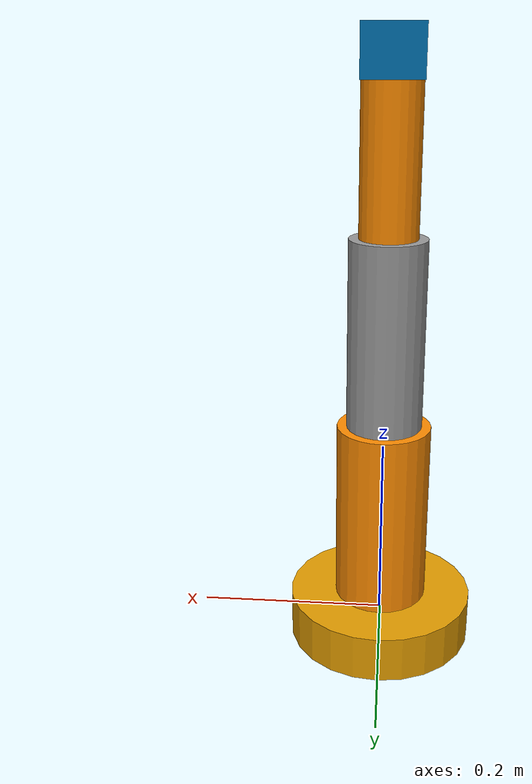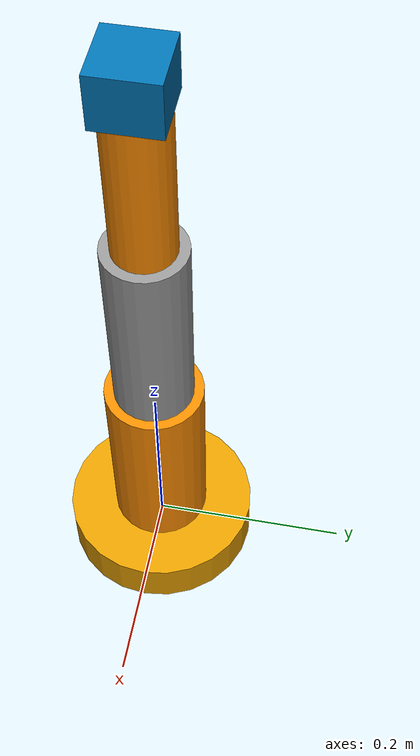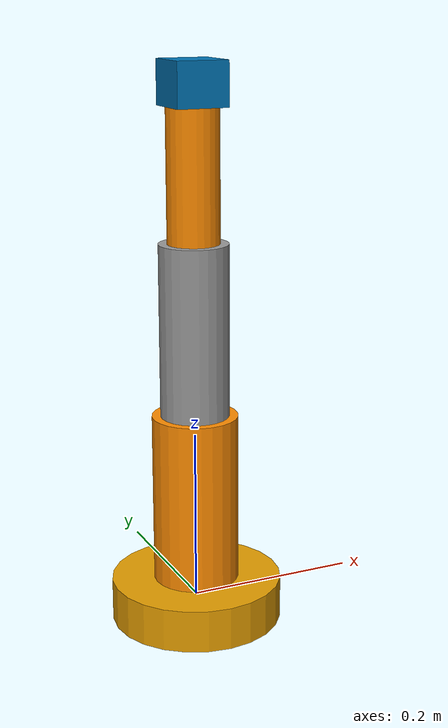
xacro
<?xml version="1.0"?>
<robot xmlns:xacro="http://www.ros.org/wiki/xacro" name="my_robot_arm">
  <xacro:property name="PI" value="3.141592653589793"/>
  <material name="orange"><color rgba="1 0.55 0 1"/></material>
  <material name="grey"><color rgba="0.6 0.6 0.6 1"/></material>

  <!-- base -->
  <link name="base_link">
    <visual><geometry><cylinder radius="0.1" length="0.05"/></geometry></visual>
  </link>

  <!-- link 1 -->
  <link name="link_1">
    <visual><origin xyz="0 0 0.1"/><geometry><cylinder radius="0.05" length="0.2"/></geometry><material name="orange"/></visual>
  </link>
  <joint name="joint_1" type="revolute">
    <parent link="base_link"/><child link="link_1"/>
    <origin xyz="0 0 0.025"/><axis xyz="0 0 1"/>
    <limit lower="-${PI}" upper="${PI}" effort="50" velocity="1"/>
  </joint>

  <!-- link 2 -->
  <link name="link_2">
    <visual><origin xyz="0 0 0.1"/><geometry><cylinder radius="0.04" length="0.2"/></geometry><material name="grey"/></visual>
  </link>
  <joint name="joint_2" type="revolute">
    <parent link="link_1"/><child link="link_2"/>
    <origin xyz="0 0 0.2"/><axis xyz="0 1 0"/>
    <limit lower="-1.57" upper="1.57" effort="50" velocity="1"/>
  </joint>

  <!-- link 3 -->
  <link name="link_3">
    <visual><origin xyz="0 0 0.075"/><geometry><cylinder radius="0.03" length="0.15"/></geometry><material name="orange"/></visual>
  </link>
  <joint name="joint_3" type="revolute">
    <parent link="link_2"/><child link="link_3"/>
    <origin xyz="0 0 0.2"/><axis xyz="0 1 0"/>
    <limit lower="-1.57" upper="1.57" effort="30" velocity="1"/>
  </joint>

  <!-- end-effector -->
  <link name="end_effector">
    <visual><origin xyz="0 0 0.025"/><geometry><box size="0.06 0.06 0.05"/></geometry></visual>
  </link>
  <joint name="ee_fixed" type="fixed">
    <parent link="link_3"/><child link="end_effector"/><origin xyz="0 0 0.15"/>
  </joint>
</robot>
